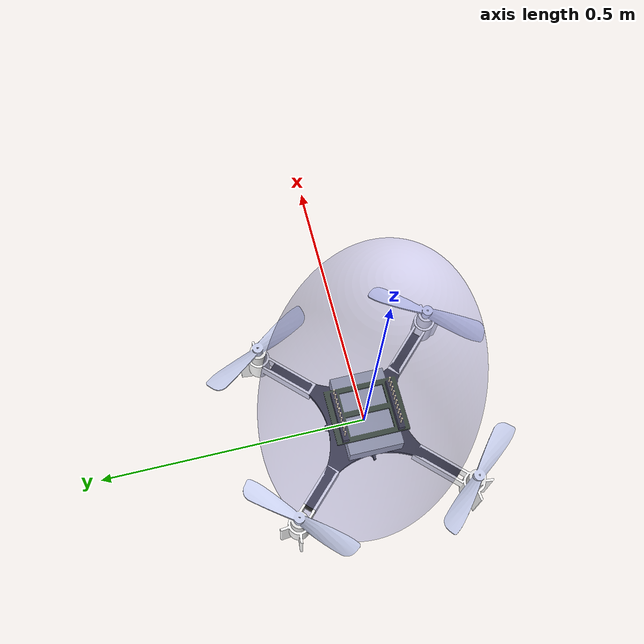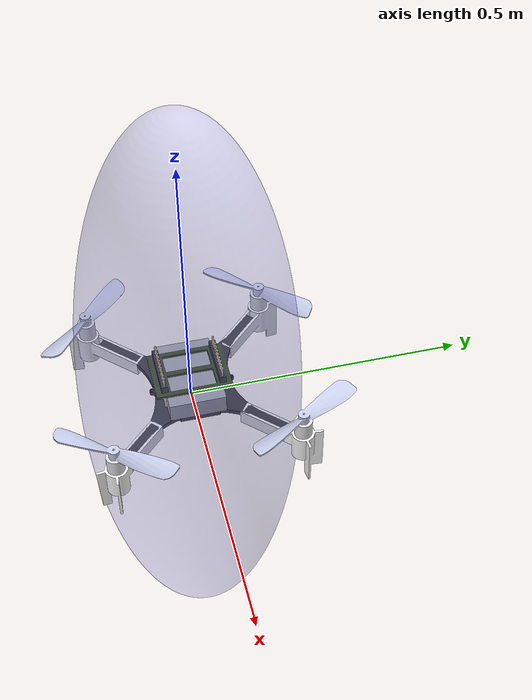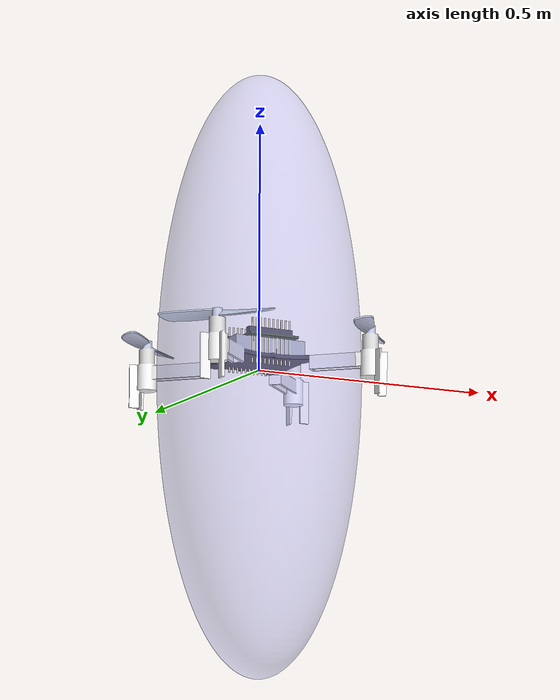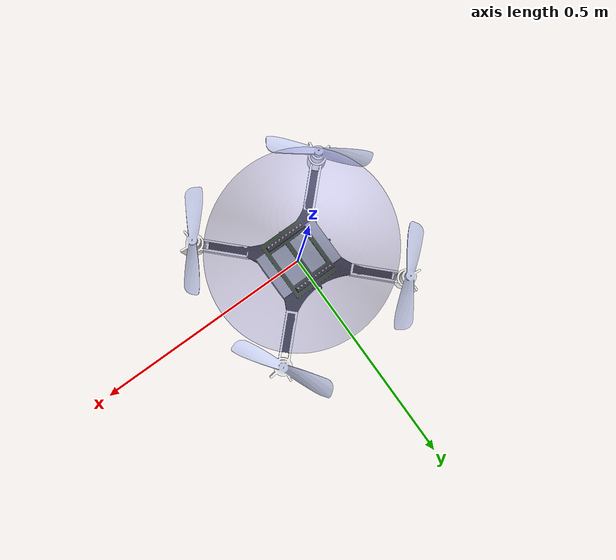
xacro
<?xml version="1.0"?>

<robot xmlns:xacro="http://www.ros.org/wiki/xacro" name="crazyflie2">

  <xacro:property name="rotor_drag_coefficient" value="1.8580e-05"/>
  <xacro:property name="moment_constant" value="0.005"/>

  <link name="base_link">
    <inertial>
      <mass value="0.027" />
      <origin xyz="0 0 0" />
      <!-- Refer to page 39 in http://groups.csail.mit.edu/robotics-center/public_papers/Landry15.pdf -->
      <inertia ixx="2.3951e-5" ixy="0.0" ixz="0.0" iyy="2.3951e-5" iyz="0.0" izz="3.2347e-5" />
      <!-- In Kg m^2 -->
    </inertial>

    <visual>
      <origin xyz="0 0 0" rpy="0 0 0" />
      <geometry>
        <mesh filename="package://crazyflie_description/meshes/crazyflie2.dae"/>
      </geometry>
    </visual>

    <collision>
      <origin xyz="0 0 0" rpy="0 0 0" />
      <geometry>
        <mesh filename="package://crazyflie_description/meshes/crazyflie2.dae"/>
      </geometry>
    </collision>

    <!-- ToDo: insert collision model -->

  </link>

  <link name="constraint">
    <visual>
      <origin xyz="0 0 0.0" rpy="0 0 0"/>
      <geometry>
        <mesh filename="package://ss_workshop/models/meshes/ellipsoid.stl" scale="1.0 1.0 1.0"/>
      </geometry>
      <material name="blueTransparent">
        <color rgba="0.7 0.7 1.0 0.4"/>
      </material>
    </visual>
  </link>

  <joint name="constraint_joint" type="fixed">
    <parent link="base_link"/>
    <child link="constraint"/>
    <origin xyz="0.0 0.0 0.0" rpy="0 0 0"/>
  </joint>

  <gazebo reference="constraint">
    <material>Gazebo/RedTransparent</material>
  </gazebo>

</robot>
